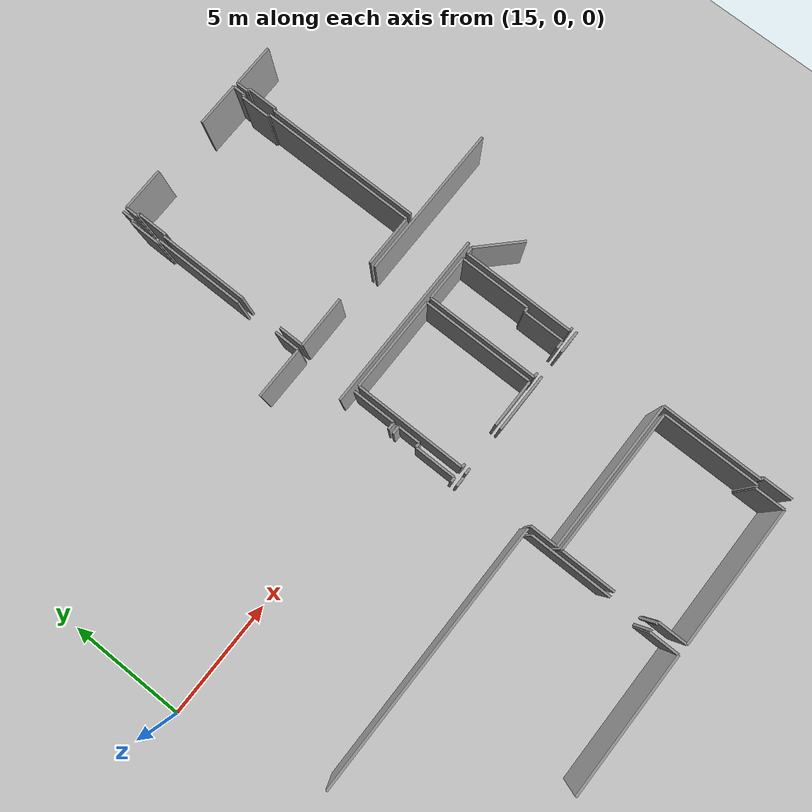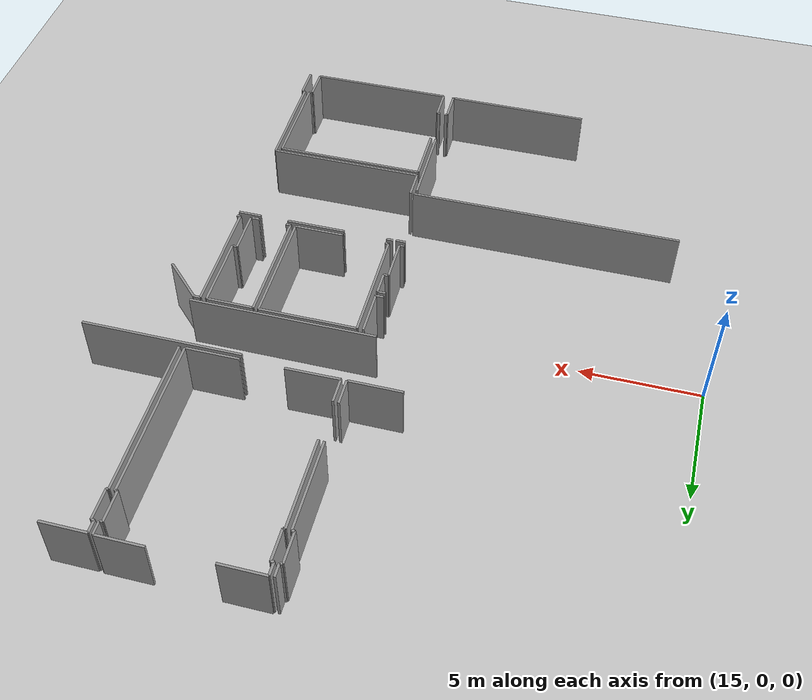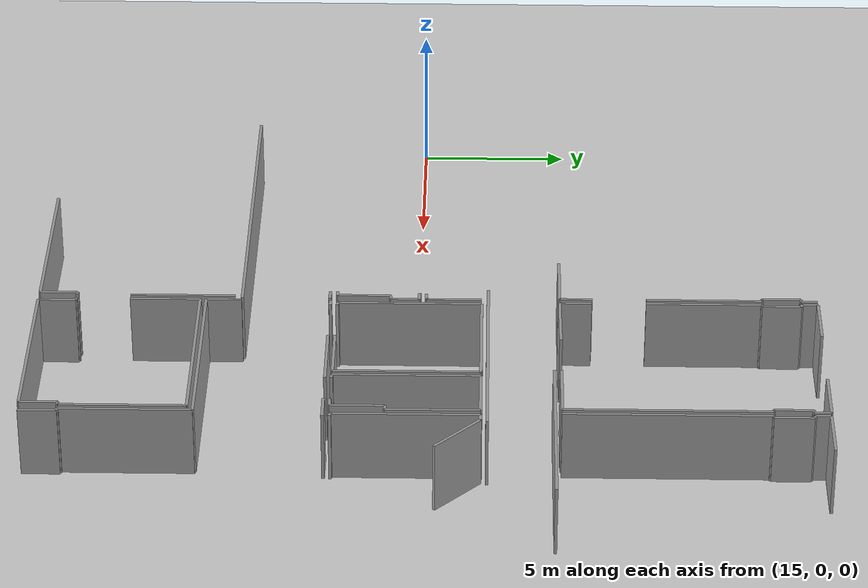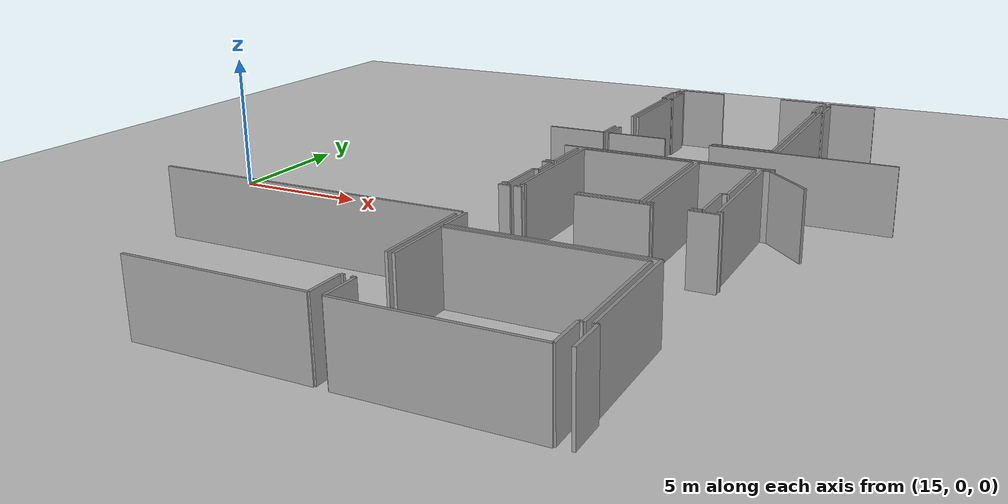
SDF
<sdf version="1.6">
 <world name="default">
  <model name="ground_plane">
   <static>1</static>
   <link name="link">
    <collision name="collision">
     <geometry><plane><normal>0 0 1</normal><size>100 100</size></plane></geometry>
     <surface><friction><ode><mu>100</mu><mu2>50</mu2></ode></friction></surface>
    </collision>
    <visual name="visual">
     <cast_shadows>0</cast_shadows>
     <geometry><plane><normal>0 0 1</normal><size>100 100</size></plane></geometry>
     <material>
      <script><uri>file://media/materials/scripts/gazebo.material</uri><name>Gazebo/Grey</name></script>
     </material>
    </visual>
   </link>
  </model>
  <model name="0510040943_A-40">
   <static>1</static>
   <link name="Wall_355">
    <collision name="Wall_355_Collision">
     <geometry><box><size>0.408103719491 0.1 2.5</size></box></geometry>
     <pose>0.204051859745 0 1.25 0 0 0</pose>
    </collision>
    <visual name="Wall_355_Visual">
     <pose>0.204051859745 0 1.25 0 0 0</pose>
     <geometry><box><size>0.408103719491 0.1 2.5</size></box></geometry>
     <material>
      <script><uri>file://media/materials/scripts/gazebo.material</uri><name>Gazebo/Grey</name></script>
      <ambient>1 1 1 1</ambient>
     </material>
    </visual>
    <pose>84.140153245 -16.3732430101 0 0 0 0.0</pose>
   </link>
   <link name="Wall_356">
    <collision name="Wall_356_Collision">
     <geometry><box><size>11.4354036637 0.1 2.5</size></box></geometry>
     <pose>5.71770183184 0 1.25 0 0 0</pose>
    </collision>
    <visual name="Wall_356_Visual">
     <pose>5.71770183184 0 1.25 0 0 0</pose>
     <geometry><box><size>11.4354036637 0.1 2.5</size></box></geometry>
     <material>
      <script><uri>file://media/materials/scripts/gazebo.material</uri><name>Gazebo/Grey</name></script>
      <ambient>1 1 1 1</ambient>
     </material>
    </visual>
    <pose>84.5482569645 -19.3194042726 0 0 0 3.14159265359</pose>
   </link>
   <link name="Wall_367">
    <collision name="Wall_367_Collision">
     <geometry><box><size>3.52869538743 0.1 2.5</size></box></geometry>
     <pose>1.76434769371 0 1.25 0 0 0</pose>
    </collision>
    <visual name="Wall_367_Visual">
     <pose>1.76434769371 0 1.25 0 0 0</pose>
     <geometry><box><size>3.52869538743 0.1 2.5</size></box></geometry>
     <material>
      <script><uri>file://media/materials/scripts/gazebo.material</uri><name>Gazebo/Grey</name></script>
      <ambient>1 1 1 1</ambient>
     </material>
    </visual>
    <pose>84.4413152687 -19.5525701527 0 0 0 -1.57079632679</pose>
   </link>
   <link name="Wall_368">
    <collision name="Wall_368_Collision">
     <geometry><box><size>0.115568072259 0.1 2.5</size></box></geometry>
     <pose>0.0577840361293 0 1.25 0 0 0</pose>
    </collision>
    <visual name="Wall_368_Visual">
     <pose>0.0577840361293 0 1.25 0 0 0</pose>
     <geometry><box><size>0.115568072259 0.1 2.5</size></box></geometry>
     <material>
      <script><uri>file://media/materials/scripts/gazebo.material</uri><name>Gazebo/Grey</name></script>
      <ambient>1 1 1 1</ambient>
     </material>
    </visual>
    <pose>84.4413152687 -24.8789770132 0 0 0 3.14159265359</pose>
   </link>
   <link name="Wall_369">
    <collision name="Wall_369_Collision">
     <geometry><box><size>1.26351042777 0.1 2.5</size></box></geometry>
     <pose>0.631755213883 0 1.25 0 0 0</pose>
    </collision>
    <visual name="Wall_369_Visual">
     <pose>0.631755213883 0 1.25 0 0 0</pose>
     <geometry><box><size>1.26351042777 0.1 2.5</size></box></geometry>
     <material>
      <script><uri>file://media/materials/scripts/gazebo.material</uri><name>Gazebo/Grey</name></script>
      <ambient>1 1 1 1</ambient>
     </material>
    </visual>
    <pose>84.3257471964 -24.8789770132 0 0 0 -1.57079632679</pose>
   </link>
   <link name="Wall_370">
    <collision name="Wall_370_Collision">
     <geometry><box><size>6.03770233927 0.1 2.5</size></box></geometry>
     <pose>3.01885116964 0 1.25 0 0 0</pose>
    </collision>
    <visual name="Wall_370_Visual">
     <pose>3.01885116964 0 1.25 0 0 0</pose>
     <geometry><box><size>6.03770233927 0.1 2.5</size></box></geometry>
     <material>
      <script><uri>file://media/materials/scripts/gazebo.material</uri><name>Gazebo/Grey</name></script>
      <ambient>1 1 1 1</ambient>
     </material>
    </visual>
    <pose>84.3257471964 -26.142487441 0 0 0 3.14159265359</pose>
   </link>
   <link name="Wall_375">
    <collision name="Wall_375_Collision">
     <geometry><box><size>1.26617445578 0.1 2.5</size></box></geometry>
     <pose>0.633087227889 0 1.25 0 0 0</pose>
    </collision>
    <visual name="Wall_375_Visual">
     <pose>0.633087227889 0 1.25 0 0 0</pose>
     <geometry><box><size>1.26617445578 0.1 2.5</size></box></geometry>
     <material>
      <script><uri>file://media/materials/scripts/gazebo.material</uri><name>Gazebo/Grey</name></script>
      <ambient>1 1 1 1</ambient>
     </material>
    </visual>
    <pose>84.7962652864 -26.1654488253 0 0 0 1.57079632679</pose>
   </link>
   <link name="Wall_376">
    <collision name="Wall_376_Collision">
     <geometry><box><size>0.12394073172 0.1 2.5</size></box></geometry>
     <pose>0.0619703658598 0 1.25 0 0 0</pose>
    </collision>
    <visual name="Wall_376_Visual">
     <pose>0.0619703658598 0 1.25 0 0 0</pose>
     <geometry><box><size>0.12394073172 0.1 2.5</size></box></geometry>
     <material>
      <script><uri>file://media/materials/scripts/gazebo.material</uri><name>Gazebo/Grey</name></script>
      <ambient>1 1 1 1</ambient>
     </material>
    </visual>
    <pose>84.7962652864 -24.8992743695 0 0 0 3.14159265359</pose>
   </link>
   <link name="Wall_377">
    <collision name="Wall_377_Collision">
     <geometry><box><size>2.35347845943 0.1 2.5</size></box></geometry>
     <pose>1.17673922972 0 1.25 0 0 0</pose>
    </collision>
    <visual name="Wall_377_Visual">
     <pose>1.17673922972 0 1.25 0 0 0</pose>
     <geometry><box><size>2.35347845943 0.1 2.5</size></box></geometry>
     <material>
      <script><uri>file://media/materials/scripts/gazebo.material</uri><name>Gazebo/Grey</name></script>
      <ambient>1 1 1 1</ambient>
     </material>
    </visual>
    <pose>84.6723245547 -23.0825341249 0 0 0 1.57079632679</pose>
   </link>
   <link name="Wall_378">
    <collision name="Wall_378_Collision">
     <geometry><box><size>6.27759171868 0.1 2.5</size></box></geometry>
     <pose>3.13879585934 0 1.25 0 0 0</pose>
    </collision>
    <visual name="Wall_378_Visual">
     <pose>3.13879585934 0 1.25 0 0 0</pose>
     <geometry><box><size>6.27759171868 0.1 2.5</size></box></geometry>
     <material>
      <script><uri>file://media/materials/scripts/gazebo.material</uri><name>Gazebo/Grey</name></script>
      <ambient>1 1 1 1</ambient>
     </material>
    </visual>
    <pose>84.6723245547 -20.7290556655 0 0 0 0.0</pose>
   </link>
   <link name="Wall_379">
    <collision name="Wall_379_Collision">
     <geometry><box><size>4.1594357335 0.1 2.5</size></box></geometry>
     <pose>2.07971786675 0 1.25 0 0 0</pose>
    </collision>
    <visual name="Wall_379_Visual">
     <pose>2.07971786675 0 1.25 0 0 0</pose>
     <geometry><box><size>4.1594357335 0.1 2.5</size></box></geometry>
     <material>
      <script><uri>file://media/materials/scripts/gazebo.material</uri><name>Gazebo/Grey</name></script>
      <ambient>1 1 1 1</ambient>
     </material>
    </visual>
    <pose>90.9499162734 -20.7290556655 0 0 0 -1.57079632679</pose>
   </link>
   <link name="Wall_380">
    <collision name="Wall_380_Collision">
     <geometry><box><size>0.134089409854 0.1 2.5</size></box></geometry>
     <pose>0.0670447049272 0 1.25 0 0 0</pose>
    </collision>
    <visual name="Wall_380_Visual">
     <pose>0.0670447049272 0 1.25 0 0 0</pose>
     <geometry><box><size>0.134089409854 0.1 2.5</size></box></geometry>
     <material>
      <script><uri>file://media/materials/scripts/gazebo.material</uri><name>Gazebo/Grey</name></script>
      <ambient>1 1 1 1</ambient>
     </material>
    </visual>
    <pose>90.9499162734 -24.888491399 0 0 0 3.14159265359</pose>
   </link>
   <link name="Wall_381">
    <collision name="Wall_381_Collision">
     <geometry><box><size>1.26921905922 0.1 2.5</size></box></geometry>
     <pose>0.634609529609 0 1.25 0 0 0</pose>
    </collision>
    <visual name="Wall_381_Visual">
     <pose>0.634609529609 0 1.25 0 0 0</pose>
     <geometry><box><size>1.26921905922 0.1 2.5</size></box></geometry>
     <material>
      <script><uri>file://media/materials/scripts/gazebo.material</uri><name>Gazebo/Grey</name></script>
      <ambient>1 1 1 1</ambient>
     </material>
    </visual>
    <pose>90.8158268636 -24.888491399 0 0 0 -1.57079632679</pose>
   </link>
   <link name="Wall_382">
    <collision name="Wall_382_Collision">
     <geometry><box><size>6.01956655108 0.1 2.5</size></box></geometry>
     <pose>3.00978327554 0 1.25 0 0 0</pose>
    </collision>
    <visual name="Wall_382_Visual">
     <pose>3.00978327554 0 1.25 0 0 0</pose>
     <geometry><box><size>6.01956655108 0.1 2.5</size></box></geometry>
     <material>
      <script><uri>file://media/materials/scripts/gazebo.material</uri><name>Gazebo/Grey</name></script>
      <ambient>1 1 1 1</ambient>
     </material>
    </visual>
    <pose>90.8158268636 -26.1577104582 0 0 0 -3.14030711764</pose>
   </link>
   <link name="Wall_383">
    <collision name="Wall_383_Collision">
     <geometry><box><size>1.27467397371 0.1 2.5</size></box></geometry>
     <pose>0.637336986857 0 1.25 0 0 0</pose>
    </collision>
    <visual name="Wall_383_Visual">
     <pose>0.637336986857 0 1.25 0 0 0</pose>
     <geometry><box><size>1.27467397371 0.1 2.5</size></box></geometry>
     <material>
      <script><uri>file://media/materials/scripts/gazebo.material</uri><name>Gazebo/Grey</name></script>
      <ambient>1 1 1 1</ambient>
     </material>
    </visual>
    <pose>91.2902775663 -26.1558075811 0 0 0 1.57079632679</pose>
   </link>
   <link name="Wall_384">
    <collision name="Wall_384_Collision">
     <geometry><box><size>0.111889176435 0.1 2.5</size></box></geometry>
     <pose>0.0559445882174 0 1.25 0 0 0</pose>
    </collision>
    <visual name="Wall_384_Visual">
     <pose>0.0559445882174 0 1.25 0 0 0</pose>
     <geometry><box><size>0.111889176435 0.1 2.5</size></box></geometry>
     <material>
      <script><uri>file://media/materials/scripts/gazebo.material</uri><name>Gazebo/Grey</name></script>
      <ambient>1 1 1 1</ambient>
     </material>
    </visual>
    <pose>91.2902775663 -24.8811336073 0 0 0 3.14159265359</pose>
   </link>
   <link name="Wall_385">
    <collision name="Wall_385_Collision">
     <geometry><box><size>4.35593951388 0.1 2.5</size></box></geometry>
     <pose>2.17796975694 0 1.25 0 0 0</pose>
    </collision>
    <visual name="Wall_385_Visual">
     <pose>2.17796975694 0 1.25 0 0 0</pose>
     <geometry><box><size>4.35593951388 0.1 2.5</size></box></geometry>
     <material>
      <script><uri>file://media/materials/scripts/gazebo.material</uri><name>Gazebo/Grey</name></script>
      <ambient>1 1 1 1</ambient>
     </material>
    </visual>
    <pose>91.1783883899 -24.8811336073 0 0 0 1.57079632679</pose>
   </link>
   <link name="Wall_386">
    <collision name="Wall_386_Collision">
     <geometry><box><size>6.50682498605 0.1 2.5</size></box></geometry>
     <pose>3.25341249302 0 1.25 0 0 0</pose>
    </collision>
    <visual name="Wall_386_Visual">
     <pose>3.25341249302 0 1.25 0 0 0</pose>
     <geometry><box><size>6.50682498605 0.1 2.5</size></box></geometry>
     <material>
      <script><uri>file://media/materials/scripts/gazebo.material</uri><name>Gazebo/Grey</name></script>
      <ambient>1 1 1 1</ambient>
     </material>
    </visual>
    <pose>91.1783883899 -20.5251940935 0 0 0 3.14159265359</pose>
   </link>
   <link name="Wall_387">
    <collision name="Wall_387_Collision">
     <geometry><box><size>1.18942507738 0.1 2.5</size></box></geometry>
     <pose>0.594712538692 0 1.25 0 0 0</pose>
    </collision>
    <visual name="Wall_387_Visual">
     <pose>0.594712538692 0 1.25 0 0 0</pose>
     <geometry><box><size>1.18942507738 0.1 2.5</size></box></geometry>
     <material>
      <script><uri>file://media/materials/scripts/gazebo.material</uri><name>Gazebo/Grey</name></script>
      <ambient>1 1 1 1</ambient>
     </material>
    </visual>
    <pose>84.6715634039 -20.5251940935 0 0 0 1.57079632679</pose>
   </link>
   <link name="Wall_388">
    <collision name="Wall_388_Collision">
     <geometry><box><size>0.276044045263 0.1 2.5</size></box></geometry>
     <pose>0.138022022632 0 1.25 0 0 0</pose>
    </collision>
    <visual name="Wall_388_Visual">
     <pose>0.138022022632 0 1.25 0 0 0</pose>
     <geometry><box><size>0.276044045263 0.1 2.5</size></box></geometry>
     <material>
      <script><uri>file://media/materials/scripts/gazebo.material</uri><name>Gazebo/Grey</name></script>
      <ambient>1 1 1 1</ambient>
     </material>
    </visual>
    <pose>84.6715634039 -16.3500279089 0 0 0 0.0</pose>
   </link>
   <link name="Wall_389">
    <collision name="Wall_389_Collision">
     <geometry><box><size>2.49391079312 0.1 2.5</size></box></geometry>
     <pose>1.24695539656 0 1.25 0 0 0</pose>
    </collision>
    <visual name="Wall_389_Visual">
     <pose>1.24695539656 0 1.25 0 0 0</pose>
     <geometry><box><size>2.49391079312 0.1 2.5</size></box></geometry>
     <material>
      <script><uri>file://media/materials/scripts/gazebo.material</uri><name>Gazebo/Grey</name></script>
      <ambient>1 1 1 1</ambient>
     </material>
    </visual>
    <pose>86.7723397777 -16.3500279089 0 0 0 0.0</pose>
   </link>
   <link name="Wall_390">
    <collision name="Wall_390_Collision">
     <geometry><box><size>0.978459430659 0.1 2.5</size></box></geometry>
     <pose>0.48922971533 0 1.25 0 0 0</pose>
    </collision>
    <visual name="Wall_390_Visual">
     <pose>0.48922971533 0 1.25 0 0 0</pose>
     <geometry><box><size>0.978459430659 0.1 2.5</size></box></geometry>
     <material>
      <script><uri>file://media/materials/scripts/gazebo.material</uri><name>Gazebo/Grey</name></script>
      <ambient>1 1 1 1</ambient>
     </material>
    </visual>
    <pose>90.4461612625 -16.3500279089 0 0 0 0.0</pose>
   </link>
   <link name="Wall_407">
    <collision name="Wall_407_Collision">
     <geometry><box><size>0.345308773532 0.1 2.5</size></box></geometry>
     <pose>0.172654386766 0 1.25 0 0 0</pose>
    </collision>
    <visual name="Wall_407_Visual">
     <pose>0.172654386766 0 1.25 0 0 0</pose>
     <geometry><box><size>0.345308773532 0.1 2.5</size></box></geometry>
     <material>
      <script><uri>file://media/materials/scripts/gazebo.material</uri><name>Gazebo/Grey</name></script>
      <ambient>1 1 1 1</ambient>
     </material>
    </visual>
    <pose>84.1919115035 -13.3693611407 0 0 0 0.0</pose>
   </link>
   <link name="Wall_408">
    <collision name="Wall_408_Collision">
     <geometry><box><size>0.968818186431 0.1 2.5</size></box></geometry>
     <pose>0.484409093216 0 1.25 0 0 0</pose>
    </collision>
    <visual name="Wall_408_Visual">
     <pose>0.484409093216 0 1.25 0 0 0</pose>
     <geometry><box><size>0.968818186431 0.1 2.5</size></box></geometry>
     <material>
      <script><uri>file://media/materials/scripts/gazebo.material</uri><name>Gazebo/Grey</name></script>
      <ambient>1 1 1 1</ambient>
     </material>
    </visual>
    <pose>84.5372202771 -13.3693611407 0 0 0 -1.57079632679</pose>
   </link>
   <link name="Wall_409">
    <collision name="Wall_409_Collision">
     <geometry><box><size>0.201324402497 0.1 2.5</size></box></geometry>
     <pose>0.100662201248 0 1.25 0 0 0</pose>
    </collision>
    <visual name="Wall_409_Visual">
     <pose>0.100662201248 0 1.25 0 0 0</pose>
     <geometry><box><size>0.201324402497 0.1 2.5</size></box></geometry>
     <material>
      <script><uri>file://media/materials/scripts/gazebo.material</uri><name>Gazebo/Grey</name></script>
      <ambient>1 1 1 1</ambient>
     </material>
    </visual>
    <pose>84.5372202771 -14.3381793271 0 0 0 3.14159265359</pose>
   </link>
   <link name="Wall_410">
    <collision name="Wall_410_Collision">
     <geometry><box><size>1.78413761608 0.1 2.5</size></box></geometry>
     <pose>0.892068808038 0 1.25 0 0 0</pose>
    </collision>
    <visual name="Wall_410_Visual">
     <pose>0.892068808038 0 1.25 0 0 0</pose>
     <geometry><box><size>1.78413761608 0.1 2.5</size></box></geometry>
     <material>
      <script><uri>file://media/materials/scripts/gazebo.material</uri><name>Gazebo/Grey</name></script>
      <ambient>1 1 1 1</ambient>
     </material>
    </visual>
    <pose>84.3358958746 -14.3381793271 0 0 0 -1.57079632679</pose>
   </link>
   <link name="Wall_411">
    <collision name="Wall_411_Collision">
     <geometry><box><size>0.201451260973 0.1 2.5</size></box></geometry>
     <pose>0.100725630487 0 1.25 0 0 0</pose>
    </collision>
    <visual name="Wall_411_Visual">
     <pose>0.100725630487 0 1.25 0 0 0</pose>
     <geometry><box><size>0.201451260973 0.1 2.5</size></box></geometry>
     <material>
      <script><uri>file://media/materials/scripts/gazebo.material</uri><name>Gazebo/Grey</name></script>
      <ambient>1 1 1 1</ambient>
     </material>
    </visual>
    <pose>84.3358958746 -16.1223169432 0 0 0 3.14159265359</pose>
   </link>
   <link name="Wall_416">
    <collision name="Wall_416_Collision">
     <geometry><box><size>1.86520018268 0.1 2.5</size></box></geometry>
     <pose>0.932600091338 0 1.25 0 0 0</pose>
    </collision>
    <visual name="Wall_416_Visual">
     <pose>0.932600091338 0 1.25 0 0 0</pose>
     <geometry><box><size>1.86520018268 0.1 2.5</size></box></geometry>
     <material>
      <script><uri>file://media/materials/scripts/gazebo.material</uri><name>Gazebo/Grey</name></script>
      <ambient>1 1 1 1</ambient>
     </material>
    </visual>
    <pose>84.5439437763 -11.2770842848 0 0 0 -1.57079632679</pose>
   </link>
   <link name="Wall_417">
    <collision name="Wall_417_Collision">
     <geometry><box><size>0.327929162227 0.1 2.5</size></box></geometry>
     <pose>0.163964581113 0 1.25 0 0 0</pose>
    </collision>
    <visual name="Wall_417_Visual">
     <pose>0.163964581113 0 1.25 0 0 0</pose>
     <geometry><box><size>0.327929162227 0.1 2.5</size></box></geometry>
     <material>
      <script><uri>file://media/materials/scripts/gazebo.material</uri><name>Gazebo/Grey</name></script>
      <ambient>1 1 1 1</ambient>
     </material>
    </visual>
    <pose>84.5439437763 -13.1422844674 0 0 0 3.14159265359</pose>
   </link>
   <link name="Wall_419">
    <collision name="Wall_419_Collision">
     <geometry><box><size>4.81275688842 0.1 2.5</size></box></geometry>
     <pose>2.40637844421 0 1.25 0 0 0</pose>
    </collision>
    <visual name="Wall_419_Visual">
     <pose>2.40637844421 0 1.25 0 0 0</pose>
     <geometry><box><size>4.81275688842 0.1 2.5</size></box></geometry>
     <material>
      <script><uri>file://media/materials/scripts/gazebo.material</uri><name>Gazebo/Grey</name></script>
      <ambient>1 1 1 1</ambient>
     </material>
    </visual>
    <pose>84.7956309941 -16.0903486071 0 0 0 1.57079632679</pose>
   </link>
   <link name="Wall_420">
    <collision name="Wall_420_Collision">
     <geometry><box><size>4.05477749023 0.1 2.5</size></box></geometry>
     <pose>2.02738874512 0 1.25 0 0 0</pose>
    </collision>
    <visual name="Wall_420_Visual">
     <pose>2.02738874512 0 1.25 0 0 0</pose>
     <geometry><box><size>4.05477749023 0.1 2.5</size></box></geometry>
     <material>
      <script><uri>file://media/materials/scripts/gazebo.material</uri><name>Gazebo/Grey</name></script>
      <ambient>1 1 1 1</ambient>
     </material>
    </visual>
    <pose>84.7956309941 -11.2775917187 0 0 0 0.0</pose>
   </link>
   <link name="Wall_421">
    <collision name="Wall_421_Collision">
     <geometry><box><size>4.84282234739 0.1 2.5</size></box></geometry>
     <pose>2.42141117369 0 1.25 0 0 0</pose>
    </collision>
    <visual name="Wall_421_Visual">
     <pose>2.42141117369 0 1.25 0 0 0</pose>
     <geometry><box><size>4.84282234739 0.1 2.5</size></box></geometry>
     <material>
      <script><uri>file://media/materials/scripts/gazebo.material</uri><name>Gazebo/Grey</name></script>
      <ambient>1 1 1 1</ambient>
     </material>
    </visual>
    <pose>88.8504084843 -11.2775917187 0 0 0 -1.57079632679</pose>
   </link>
   <link name="Wall_422">
    <collision name="Wall_422_Collision">
     <geometry><box><size>2.07312122596 0.1 2.5</size></box></geometry>
     <pose>1.03656061298 0 1.25 0 0 0</pose>
    </collision>
    <visual name="Wall_422_Visual">
     <pose>1.03656061298 0 1.25 0 0 0</pose>
     <geometry><box><size>2.07312122596 0.1 2.5</size></box></geometry>
     <material>
      <script><uri>file://media/materials/scripts/gazebo.material</uri><name>Gazebo/Grey</name></script>
      <ambient>1 1 1 1</ambient>
     </material>
    </visual>
    <pose>88.8504084843 -16.1204140661 0 0 0 3.14159265359</pose>
   </link>
   <link name="Wall_423">
    <collision name="Wall_423_Collision">
     <geometry><box><size>0.157037984799 0.1 2.5</size></box></geometry>
     <pose>0.0785189923997 0 1.25 0 0 0</pose>
    </collision>
    <visual name="Wall_423_Visual">
     <pose>0.0785189923997 0 1.25 0 0 0</pose>
     <geometry><box><size>0.157037984799 0.1 2.5</size></box></geometry>
     <material>
      <script><uri>file://media/materials/scripts/gazebo.material</uri><name>Gazebo/Grey</name></script>
      <ambient>1 1 1 1</ambient>
     </material>
    </visual>
    <pose>84.9497640432 -16.1204140661 0 0 0 2.94894990966</pose>
   </link>
   <link name="Wall_424">
    <collision name="Wall_424_Collision">
     <geometry><box><size>4.85157558228 0.1 2.5</size></box></geometry>
     <pose>2.42578779114 0 1.25 0 0 0</pose>
    </collision>
    <visual name="Wall_424_Visual">
     <pose>2.42578779114 0 1.25 0 0 0</pose>
     <geometry><box><size>4.85157558228 0.1 2.5</size></box></geometry>
     <material>
      <script><uri>file://media/materials/scripts/gazebo.material</uri><name>Gazebo/Grey</name></script>
      <ambient>1 1 1 1</ambient>
     </material>
    </visual>
    <pose>89.0731719694 -16.1330999137 0 0 0 1.57079632679</pose>
   </link>
   <link name="Wall_425">
    <collision name="Wall_425_Collision">
     <geometry><box><size>1.96021718171 0.1 2.5</size></box></geometry>
     <pose>0.980108590856 0 1.25 0 0 0</pose>
    </collision>
    <visual name="Wall_425_Visual">
     <pose>0.980108590856 0 1.25 0 0 0</pose>
     <geometry><box><size>1.96021718171 0.1 2.5</size></box></geometry>
     <material>
      <script><uri>file://media/materials/scripts/gazebo.material</uri><name>Gazebo/Grey</name></script>
      <ambient>1 1 1 1</ambient>
     </material>
    </visual>
    <pose>89.0731719694 -11.2815243315 0 0 0 0.0</pose>
   </link>
   <link name="Wall_426">
    <collision name="Wall_426_Collision">
     <geometry><box><size>3.07492261633 0.1 2.5</size></box></geometry>
     <pose>1.53746130816 0 1.25 0 0 0</pose>
    </collision>
    <visual name="Wall_426_Visual">
     <pose>1.53746130816 0 1.25 0 0 0</pose>
     <geometry><box><size>3.07492261633 0.1 2.5</size></box></geometry>
     <material>
      <script><uri>file://media/materials/scripts/gazebo.material</uri><name>Gazebo/Grey</name></script>
      <ambient>1 1 1 1</ambient>
     </material>
    </visual>
    <pose>91.0333891511 -11.2815243315 0 0 0 -1.57079632679</pose>
   </link>
   <link name="Wall_427">
    <collision name="Wall_427_Collision">
     <geometry><box><size>0.200182676206 0.1 2.5</size></box></geometry>
     <pose>0.100091338103 0 1.25 0 0 0</pose>
    </collision>
    <visual name="Wall_427_Visual">
     <pose>0.100091338103 0 1.25 0 0 0</pose>
     <geometry><box><size>0.200182676206 0.1 2.5</size></box></geometry>
     <material>
      <script><uri>file://media/materials/scripts/gazebo.material</uri><name>Gazebo/Grey</name></script>
      <ambient>1 1 1 1</ambient>
     </material>
    </visual>
    <pose>91.0333891511 -14.3564469478 0 0 0 3.14159265359</pose>
   </link>
   <link name="Wall_428">
    <collision name="Wall_428_Collision">
     <geometry><box><size>1.78502562541 0.1 2.5</size></box></geometry>
     <pose>0.892512812706 0 1.25 0 0 0</pose>
    </collision>
    <visual name="Wall_428_Visual">
     <pose>0.892512812706 0 1.25 0 0 0</pose>
     <geometry><box><size>1.78502562541 0.1 2.5</size></box></geometry>
     <material>
      <script><uri>file://media/materials/scripts/gazebo.material</uri><name>Gazebo/Grey</name></script>
      <ambient>1 1 1 1</ambient>
     </material>
    </visual>
    <pose>90.8332064749 -14.3564469478 0 0 0 -1.57079632679</pose>
   </link>
   <link name="Wall_429">
    <collision name="Wall_429_Collision">
     <geometry><box><size>0.360531790734 0.1 2.5</size></box></geometry>
     <pose>0.180265895367 0 1.25 0 0 0</pose>
    </collision>
    <visual name="Wall_429_Visual">
     <pose>0.180265895367 0 1.25 0 0 0</pose>
     <geometry><box><size>0.360531790734 0.1 2.5</size></box></geometry>
     <material>
      <script><uri>file://media/materials/scripts/gazebo.material</uri><name>Gazebo/Grey</name></script>
      <ambient>1 1 1 1</ambient>
     </material>
    </visual>
    <pose>90.8332064749 -16.1414725732 0 0 0 3.14159265359</pose>
   </link>
   <link name="Wall_430">
    <collision name="Wall_430_Collision">
     <geometry><box><size>0.204160185166 0.1 2.5</size></box></geometry>
     <pose>0.102080092583 0 1.25 0 0 0</pose>
    </collision>
    <visual name="Wall_430_Visual">
     <pose>0.102080092583 0 1.25 0 0 0</pose>
     <geometry><box><size>0.204160185166 0.1 2.5</size></box></geometry>
     <material>
      <script><uri>file://media/materials/scripts/gazebo.material</uri><name>Gazebo/Grey</name></script>
      <ambient>1 1 1 1</ambient>
     </material>
    </visual>
    <pose>89.2771603999 -16.1414725732 0 0 0 3.10057090322</pose>
   </link>
   <link name="Wall_431">
    <collision name="Wall_431_Collision">
     <geometry><box><size>4.83292738621 0.1 2.5</size></box></geometry>
     <pose>2.4164636931 0 1.25 0 0 0</pose>
    </collision>
    <visual name="Wall_431_Visual">
     <pose>2.4164636931 0 1.25 0 0 0</pose>
     <geometry><box><size>4.83292738621 0.1 2.5</size></box></geometry>
     <material>
      <script><uri>file://media/materials/scripts/gazebo.material</uri><name>Gazebo/Grey</name></script>
      <ambient>1 1 1 1</ambient>
     </material>
    </visual>
    <pose>91.2944638961 -16.1120414066 0 0 0 1.57079632679</pose>
   </link>
   <link name="Wall_432">
    <collision name="Wall_432_Collision">
     <geometry><box><size>0.281372101284 0.1 2.5</size></box></geometry>
     <pose>0.140686050642 0 1.25 0 0 0</pose>
    </collision>
    <visual name="Wall_432_Visual">
     <pose>0.140686050642 0 1.25 0 0 0</pose>
     <geometry><box><size>0.281372101284 0.1 2.5</size></box></geometry>
     <material>
      <script><uri>file://media/materials/scripts/gazebo.material</uri><name>Gazebo/Grey</name></script>
      <ambient>1 1 1 1</ambient>
     </material>
    </visual>
    <pose>91.2944638961 -11.2791140204 0 0 0 0.0</pose>
   </link>
   <link name="Wall_433">
    <collision name="Wall_433_Collision">
     <geometry><box><size>2.08569720568 0.1 2.5</size></box></geometry>
     <pose>1.04284860284 0 1.25 0 0 0</pose>
    </collision>
    <visual name="Wall_433_Visual">
     <pose>1.04284860284 0 1.25 0 0 0</pose>
     <geometry><box><size>2.08569720568 0.1 2.5</size></box></geometry>
     <material>
      <script><uri>file://media/materials/scripts/gazebo.material</uri><name>Gazebo/Grey</name></script>
      <ambient>1 1 1 1</ambient>
     </material>
    </visual>
    <pose>91.5758359974 -11.2791140204 0 0 0 -0.78053819564</pose>
   </link>
   <link name="Wall_436">
    <collision name="Wall_436_Collision">
     <geometry><box><size>0.149576257914 0.1 2.5</size></box></geometry>
     <pose>0.0747881289572 0 1.25 0 0 0</pose>
    </collision>
    <visual name="Wall_436_Visual">
     <pose>0.0747881289572 0 1.25 0 0 0</pose>
     <geometry><box><size>0.149576257914 0.1 2.5</size></box></geometry>
     <material>
      <script><uri>file://media/materials/scripts/gazebo.material</uri><name>Gazebo/Grey</name></script>
      <ambient>1 1 1 1</ambient>
     </material>
    </visual>
    <pose>91.4437763231 -16.1209215 0 0 0 3.08218938836</pose>
   </link>
   <link name="Wall_461">
    <collision name="Wall_461_Collision">
     <geometry><box><size>6.62683310499 0.1 2.5</size></box></geometry>
     <pose>3.31341655249 0 1.25 0 0 0</pose>
    </collision>
    <visual name="Wall_461_Visual">
     <pose>3.31341655249 0 1.25 0 0 0</pose>
     <geometry><box><size>6.62683310499 0.1 2.5</size></box></geometry>
     <material>
      <script><uri>file://media/materials/scripts/gazebo.material</uri><name>Gazebo/Grey</name></script>
      <ambient>1 1 1 1</ambient>
     </material>
    </visual>
    <pose>88.6960217182 -8.87628761354 0 0 0 0.0</pose>
   </link>
   <link name="Wall_470">
    <collision name="Wall_470_Collision">
     <geometry><box><size>7.71515197646 0.1 2.5</size></box></geometry>
     <pose>3.85757598823 0 1.25 0 0 0</pose>
    </collision>
    <visual name="Wall_470_Visual">
     <pose>3.85757598823 0 1.25 0 0 0</pose>
     <geometry><box><size>7.71515197646 0.1 2.5</size></box></geometry>
     <material>
      <script><uri>file://media/materials/scripts/gazebo.material</uri><name>Gazebo/Grey</name></script>
      <ambient>1 1 1 1</ambient>
     </material>
    </visual>
    <pose>91.6673009591 -11.0616785914 0 0 0 3.14159265359</pose>
   </link>
   <link name="Wall_499">
    <collision name="Wall_499_Collision">
     <geometry><box><size>6.7785558431 0.1 2.5</size></box></geometry>
     <pose>3.38927792155 0 1.25 0 0 0</pose>
    </collision>
    <visual name="Wall_499_Visual">
     <pose>3.38927792155 0 1.25 0 0 0</pose>
     <geometry><box><size>6.7785558431 0.1 2.5</size></box></geometry>
     <material>
      <script><uri>file://media/materials/scripts/gazebo.material</uri><name>Gazebo/Grey</name></script>
      <ambient>1 1 1 1</ambient>
     </material>
    </visual>
    <pose>91.1783883899 -8.65580758106 0 0 0 1.57079632679</pose>
   </link>
   <link name="Wall_500">
    <collision name="Wall_500_Collision">
     <geometry><box><size>0.0905769523519 0.1 2.5</size></box></geometry>
     <pose>0.045288476176 0 1.25 0 0 0</pose>
    </collision>
    <visual name="Wall_500_Visual">
     <pose>0.045288476176 0 1.25 0 0 0</pose>
     <geometry><box><size>0.0905769523519 0.1 2.5</size></box></geometry>
     <material>
      <script><uri>file://media/materials/scripts/gazebo.material</uri><name>Gazebo/Grey</name></script>
      <ambient>1 1 1 1</ambient>
     </material>
    </visual>
    <pose>91.1783883899 -1.87725173796 0 0 0 0.0</pose>
   </link>
   <link name="Wall_501">
    <collision name="Wall_501_Collision">
     <geometry><box><size>1.31070178109 0.1 2.5</size></box></geometry>
     <pose>0.655350890547 0 1.25 0 0 0</pose>
    </collision>
    <visual name="Wall_501_Visual">
     <pose>0.655350890547 0 1.25 0 0 0</pose>
     <geometry><box><size>1.31070178109 0.1 2.5</size></box></geometry>
     <material>
      <script><uri>file://media/materials/scripts/gazebo.material</uri><name>Gazebo/Grey</name></script>
      <ambient>1 1 1 1</ambient>
     </material>
    </visual>
    <pose>91.2689653423 -1.87725173796 0 0 0 1.57079632679</pose>
   </link>
   <link name="Wall_502">
    <collision name="Wall_502_Collision">
     <geometry><box><size>0.115187496829 0.1 2.5</size></box></geometry>
     <pose>0.0575937484143 0 1.25 0 0 0</pose>
    </collision>
    <visual name="Wall_502_Visual">
     <pose>0.0575937484143 0 1.25 0 0 0</pose>
     <geometry><box><size>0.115187496829 0.1 2.5</size></box></geometry>
     <material>
      <script><uri>file://media/materials/scripts/gazebo.material</uri><name>Gazebo/Grey</name></script>
      <ambient>1 1 1 1</ambient>
     </material>
    </visual>
    <pose>91.2689653423 -0.566549956868 0 0 0 3.14159265359</pose>
   </link>
   <link name="Wall_503">
    <collision name="Wall_503_Collision">
     <geometry><box><size>0.526589536713 0.1 2.5</size></box></geometry>
     <pose>0.263294768356 0 1.25 0 0 0</pose>
    </collision>
    <visual name="Wall_503_Visual">
     <pose>0.263294768356 0 1.25 0 0 0</pose>
     <geometry><box><size>0.526589536713 0.1 2.5</size></box></geometry>
     <material>
      <script><uri>file://media/materials/scripts/gazebo.material</uri><name>Gazebo/Grey</name></script>
      <ambient>1 1 1 1</ambient>
     </material>
    </visual>
    <pose>91.1537778454 -0.566549956868 0 0 0 1.57079632679</pose>
   </link>
   <link name="Wall_504">
    <collision name="Wall_504_Collision">
     <geometry><box><size>1.87027452174 0.1 2.5</size></box></geometry>
     <pose>0.935137260872 0 1.25 0 0 0</pose>
    </collision>
    <visual name="Wall_504_Visual">
     <pose>0.935137260872 0 1.25 0 0 0</pose>
     <geometry><box><size>1.87027452174 0.1 2.5</size></box></geometry>
     <material>
      <script><uri>file://media/materials/scripts/gazebo.material</uri><name>Gazebo/Grey</name></script>
      <ambient>1 1 1 1</ambient>
     </material>
    </visual>
    <pose>91.1537778454 -0.0399604201553 0 0 0 0.0</pose>
   </link>
   <link name="Wall_513">
    <collision name="Wall_513_Collision">
     <geometry><box><size>1.07601359923 0.1 2.5</size></box></geometry>
     <pose>0.538006799614 0 1.25 0 0 0</pose>
    </collision>
    <visual name="Wall_513_Visual">
     <pose>0.538006799614 0 1.25 0 0 0</pose>
     <geometry><box><size>1.07601359923 0.1 2.5</size></box></geometry>
     <material>
      <script><uri>file://media/materials/scripts/gazebo.material</uri><name>Gazebo/Grey</name></script>
      <ambient>1 1 1 1</ambient>
     </material>
    </visual>
    <pose>84.6857715533 -8.66785913635 0 0 0 1.57079632679</pose>
   </link>
   <link name="Wall_514">
    <collision name="Wall_514_Collision">
     <geometry><box><size>3.88770487644 0.1 2.5</size></box></geometry>
     <pose>1.94385243822 0 1.25 0 0 0</pose>
    </collision>
    <visual name="Wall_514_Visual">
     <pose>1.94385243822 0 1.25 0 0 0</pose>
     <geometry><box><size>3.88770487644 0.1 2.5</size></box></geometry>
     <material>
      <script><uri>file://media/materials/scripts/gazebo.material</uri><name>Gazebo/Grey</name></script>
      <ambient>1 1 1 1</ambient>
     </material>
    </visual>
    <pose>84.6857715533 -5.77345613234 0 0 0 1.57079632679</pose>
   </link>
   <link name="Wall_515">
    <collision name="Wall_515_Collision">
     <geometry><box><size>0.0852488963313 0.1 2.5</size></box></geometry>
     <pose>0.0426244481656 0 1.25 0 0 0</pose>
    </collision>
    <visual name="Wall_515_Visual">
     <pose>0.0426244481656 0 1.25 0 0 0</pose>
     <geometry><box><size>0.0852488963313 0.1 2.5</size></box></geometry>
     <material>
      <script><uri>file://media/materials/scripts/gazebo.material</uri><name>Gazebo/Grey</name></script>
      <ambient>1 1 1 1</ambient>
     </material>
    </visual>
    <pose>84.6857715533 -1.8857512559 0 0 0 0.0</pose>
   </link>
   <link name="Wall_516">
    <collision name="Wall_516_Collision">
     <geometry><box><size>1.31818643122 0.1 2.5</size></box></geometry>
     <pose>0.659093215609 0 1.25 0 0 0</pose>
    </collision>
    <visual name="Wall_516_Visual">
     <pose>0.659093215609 0 1.25 0 0 0</pose>
     <geometry><box><size>1.31818643122 0.1 2.5</size></box></geometry>
     <material>
      <script><uri>file://media/materials/scripts/gazebo.material</uri><name>Gazebo/Grey</name></script>
      <ambient>1 1 1 1</ambient>
     </material>
    </visual>
    <pose>84.7710204496 -1.8857512559 0 0 0 1.57079632679</pose>
   </link>
   <link name="Wall_517">
    <collision name="Wall_517_Collision">
     <geometry><box><size>0.119754401989 0.1 2.5</size></box></geometry>
     <pose>0.0598772009946 0 1.25 0 0 0</pose>
    </collision>
    <visual name="Wall_517_Visual">
     <pose>0.0598772009946 0 1.25 0 0 0</pose>
     <geometry><box><size>0.119754401989 0.1 2.5</size></box></geometry>
     <material>
      <script><uri>file://media/materials/scripts/gazebo.material</uri><name>Gazebo/Grey</name></script>
      <ambient>1 1 1 1</ambient>
     </material>
    </visual>
    <pose>84.7710204496 -0.567564824682 0 0 0 3.14159265359</pose>
   </link>
   <link name="Wall_518">
    <collision name="Wall_518_Collision">
     <geometry><box><size>0.548662911656 0.1 2.5</size></box></geometry>
     <pose>0.274331455828 0 1.25 0 0 0</pose>
    </collision>
    <visual name="Wall_518_Visual">
     <pose>0.274331455828 0 1.25 0 0 0</pose>
     <geometry><box><size>0.548662911656 0.1 2.5</size></box></geometry>
     <material>
      <script><uri>file://media/materials/scripts/gazebo.material</uri><name>Gazebo/Grey</name></script>
      <ambient>1 1 1 1</ambient>
     </material>
    </visual>
    <pose>84.6512660476 -0.567564824682 0 0 0 1.57079632679</pose>
   </link>
   <link name="Wall_519">
    <collision name="Wall_519_Collision">
     <geometry><box><size>1.87319226671 0.1 2.5</size></box></geometry>
     <pose>0.936596133354 0 1.25 0 0 0</pose>
    </collision>
    <visual name="Wall_519_Visual">
     <pose>0.936596133354 0 1.25 0 0 0</pose>
     <geometry><box><size>1.87319226671 0.1 2.5</size></box></geometry>
     <material>
      <script><uri>file://media/materials/scripts/gazebo.material</uri><name>Gazebo/Grey</name></script>
      <ambient>1 1 1 1</ambient>
     </material>
    </visual>
    <pose>84.6512660476 -0.0189019130258 0 0 0 0.0</pose>
   </link>
   <link name="Wall_520">
    <collision name="Wall_520_Collision">
     <geometry><box><size>1.91112295124 0.1 2.5</size></box></geometry>
     <pose>0.955561475618 0 1.25 0 0 0</pose>
    </collision>
    <visual name="Wall_520_Visual">
     <pose>0.955561475618 0 1.25 0 0 0</pose>
     <geometry><box><size>1.91112295124 0.1 2.5</size></box></geometry>
     <material>
      <script><uri>file://media/materials/scripts/gazebo.material</uri><name>Gazebo/Grey</name></script>
      <ambient>1 1 1 1</ambient>
     </material>
    </visual>
    <pose>89.0598518293 -0.0189019130258 0 0 0 0.0</pose>
   </link>
   <link name="Wall_521">
    <collision name="Wall_521_Collision">
     <geometry><box><size>0.55500583549 0.1 2.5</size></box></geometry>
     <pose>0.277502917745 0 1.25 0 0 0</pose>
    </collision>
    <visual name="Wall_521_Visual">
     <pose>0.277502917745 0 1.25 0 0 0</pose>
     <geometry><box><size>0.55500583549 0.1 2.5</size></box></geometry>
     <material>
      <script><uri>file://media/materials/scripts/gazebo.material</uri><name>Gazebo/Grey</name></script>
      <ambient>1 1 1 1</ambient>
     </material>
    </visual>
    <pose>90.9709747805 -0.0189019130258 0 0 0 -1.57079632679</pose>
   </link>
   <link name="Wall_522">
    <collision name="Wall_522_Collision">
     <geometry><box><size>0.1262241843 0.1 2.5</size></box></geometry>
     <pose>0.06311209215 0 1.25 0 0 0</pose>
    </collision>
    <visual name="Wall_522_Visual">
     <pose>0.06311209215 0 1.25 0 0 0</pose>
     <geometry><box><size>0.1262241843 0.1 2.5</size></box></geometry>
     <material>
      <script><uri>file://media/materials/scripts/gazebo.material</uri><name>Gazebo/Grey</name></script>
      <ambient>1 1 1 1</ambient>
     </material>
    </visual>
    <pose>90.9709747805 -0.573907748516 0 0 0 3.14159265359</pose>
   </link>
   <link name="Wall_523">
    <collision name="Wall_523_Collision">
     <geometry><box><size>1.29788907495 0.1 2.5</size></box></geometry>
     <pose>0.648944537474 0 1.25 0 0 0</pose>
    </collision>
    <visual name="Wall_523_Visual">
     <pose>0.648944537474 0 1.25 0 0 0</pose>
     <geometry><box><size>1.29788907495 0.1 2.5</size></box></geometry>
     <material>
      <script><uri>file://media/materials/scripts/gazebo.material</uri><name>Gazebo/Grey</name></script>
      <ambient>1 1 1 1</ambient>
     </material>
    </visual>
    <pose>90.8447505962 -0.573907748516 0 0 0 -1.57079632679</pose>
   </link>
   <link name="Wall_524">
    <collision name="Wall_524_Collision">
     <geometry><box><size>0.0951438575126 0.1 2.5</size></box></geometry>
     <pose>0.0475719287563 0 1.25 0 0 0</pose>
    </collision>
    <visual name="Wall_524_Visual">
     <pose>0.0475719287563 0 1.25 0 0 0</pose>
     <geometry><box><size>0.0951438575126 0.1 2.5</size></box></geometry>
     <material>
      <script><uri>file://media/materials/scripts/gazebo.material</uri><name>Gazebo/Grey</name></script>
      <ambient>1 1 1 1</ambient>
     </material>
    </visual>
    <pose>90.8447505962 -1.87179682346 0 0 0 0.0</pose>
   </link>
   <link name="Wall_525">
    <collision name="Wall_525_Collision">
     <geometry><box><size>6.77462323032 0.1 2.5</size></box></geometry>
     <pose>3.38731161516 0 1.25 0 0 0</pose>
    </collision>
    <visual name="Wall_525_Visual">
     <pose>3.38731161516 0 1.25 0 0 0</pose>
     <geometry><box><size>6.77462323032 0.1 2.5</size></box></geometry>
     <material>
      <script><uri>file://media/materials/scripts/gazebo.material</uri><name>Gazebo/Grey</name></script>
      <ambient>1 1 1 1</ambient>
     </material>
    </visual>
    <pose>90.9398944537 -1.87179682346 0 0 0 -1.57079632679</pose>
   </link>
   <link name="Wall_526">
    <collision name="Wall_526_Collision">
     <geometry><box><size>2.22928401076 0.1 2.5</size></box></geometry>
     <pose>1.11464200538 0 1.25 0 0 0</pose>
    </collision>
    <visual name="Wall_526_Visual">
     <pose>1.11464200538 0 1.25 0 0 0</pose>
     <geometry><box><size>2.22928401076 0.1 2.5</size></box></geometry>
     <material>
      <script><uri>file://media/materials/scripts/gazebo.material</uri><name>Gazebo/Grey</name></script>
      <ambient>1 1 1 1</ambient>
     </material>
    </visual>
    <pose>90.9398944537 -8.64642005379 0 0 0 3.14159265359</pose>
   </link>
   <link name="Wall_527">
    <collision name="Wall_527_Collision">
     <geometry><box><size>2.23052877201 0.1 2.5</size></box></geometry>
     <pose>1.115264386 0 1.25 0 0 0</pose>
    </collision>
    <visual name="Wall_527_Visual">
     <pose>1.115264386 0 1.25 0 0 0</pose>
     <geometry><box><size>2.23052877201 0.1 2.5</size></box></geometry>
     <material>
      <script><uri>file://media/materials/scripts/gazebo.material</uri><name>Gazebo/Grey</name></script>
      <ambient>1 1 1 1</ambient>
     </material>
    </visual>
    <pose>86.9161972903 -8.64642005379 0 0 0 -3.13198084631</pose>
   </link>
   <link name="Wall_535">
    <collision name="Wall_535_Collision">
     <geometry><box><size>0.542954280205 0.1 2.5</size></box></geometry>
     <pose>0.271477140103 0 1.25 0 0 0</pose>
    </collision>
    <visual name="Wall_535_Visual">
     <pose>0.271477140103 0 1.25 0 0 0</pose>
     <geometry><box><size>0.542954280205 0.1 2.5</size></box></geometry>
     <material>
      <script><uri>file://media/materials/scripts/gazebo.material</uri><name>Gazebo/Grey</name></script>
      <ambient>1 1 1 1</ambient>
     </material>
    </visual>
    <pose>84.4619932004 -0.0246105444766 0 0 0 -1.57079632679</pose>
   </link>
   <link name="Wall_536">
    <collision name="Wall_536_Collision">
     <geometry><box><size>0.119881260466 0.1 2.5</size></box></geometry>
     <pose>0.0599406302329 0 1.25 0 0 0</pose>
    </collision>
    <visual name="Wall_536_Visual">
     <pose>0.0599406302329 0 1.25 0 0 0</pose>
     <geometry><box><size>0.119881260466 0.1 2.5</size></box></geometry>
     <material>
      <script><uri>file://media/materials/scripts/gazebo.material</uri><name>Gazebo/Grey</name></script>
      <ambient>1 1 1 1</ambient>
     </material>
    </visual>
    <pose>84.4619932004 -0.567564824682 0 0 0 3.14159265359</pose>
   </link>
   <link name="Wall_537">
    <collision name="Wall_537_Collision">
     <geometry><box><size>1.31818643122 0.1 2.5</size></box></geometry>
     <pose>0.659093215609 0 1.25 0 0 0</pose>
    </collision>
    <visual name="Wall_537_Visual">
     <pose>0.659093215609 0 1.25 0 0 0</pose>
     <geometry><box><size>1.31818643122 0.1 2.5</size></box></geometry>
     <material>
      <script><uri>file://media/materials/scripts/gazebo.material</uri><name>Gazebo/Grey</name></script>
      <ambient>1 1 1 1</ambient>
     </material>
    </visual>
    <pose>84.3421119399 -0.567564824682 0 0 0 -1.57079632679</pose>
   </link>
   <link name="Wall_538">
    <collision name="Wall_538_Collision">
     <geometry><box><size>0.113538336632 0.1 2.5</size></box></geometry>
     <pose>0.0567691683158 0 1.25 0 0 0</pose>
    </collision>
    <visual name="Wall_538_Visual">
     <pose>0.0567691683158 0 1.25 0 0 0</pose>
     <geometry><box><size>0.113538336632 0.1 2.5</size></box></geometry>
     <material>
      <script><uri>file://media/materials/scripts/gazebo.material</uri><name>Gazebo/Grey</name></script>
      <ambient>1 1 1 1</ambient>
     </material>
    </visual>
    <pose>84.3421119399 -1.8857512559 0 0 0 0.0</pose>
   </link>
   <link name="Wall_539">
    <collision name="Wall_539_Collision">
     <geometry><box><size>3.87260871771 0.1 2.5</size></box></geometry>
     <pose>1.93630435886 0 1.25 0 0 0</pose>
    </collision>
    <visual name="Wall_539_Visual">
     <pose>1.93630435886 0 1.25 0 0 0</pose>
     <geometry><box><size>3.87260871771 0.1 2.5</size></box></geometry>
     <material>
      <script><uri>file://media/materials/scripts/gazebo.material</uri><name>Gazebo/Grey</name></script>
      <ambient>1 1 1 1</ambient>
     </material>
    </visual>
    <pose>84.4556502766 -1.8857512559 0 0 0 -1.57079632679</pose>
   </link>
   <link name="Wall_540">
    <collision name="Wall_540_Collision">
     <geometry><box><size>1.10113157761 0.1 2.5</size></box></geometry>
     <pose>0.550565788806 0 1.25 0 0 0</pose>
    </collision>
    <visual name="Wall_540_Visual">
     <pose>0.550565788806 0 1.25 0 0 0</pose>
     <geometry><box><size>1.10113157761 0.1 2.5</size></box></geometry>
     <material>
      <script><uri>file://media/materials/scripts/gazebo.material</uri><name>Gazebo/Grey</name></script>
      <ambient>1 1 1 1</ambient>
     </material>
    </visual>
    <pose>84.4556502766 -7.56672755874 0 0 0 -1.57079632679</pose>
   </link>
   <link name="Wall_541">
    <collision name="Wall_541_Collision">
     <geometry><box><size>2.2138072766 0.1 2.5</size></box></geometry>
     <pose>1.1069036383 0 1.25 0 0 0</pose>
    </collision>
    <visual name="Wall_541_Visual">
     <pose>1.1069036383 0 1.25 0 0 0</pose>
     <geometry><box><size>2.2138072766 0.1 2.5</size></box></geometry>
     <material>
      <script><uri>file://media/materials/scripts/gazebo.material</uri><name>Gazebo/Grey</name></script>
      <ambient>1 1 1 1</ambient>
     </material>
    </visual>
    <pose>84.4556502766 -8.66785913635 0 0 0 3.14159265359</pose>
   </link>
   <pose>-56.15 13.3913863094 0 0 0 0</pose>
  </model>
 </world>
</sdf>
